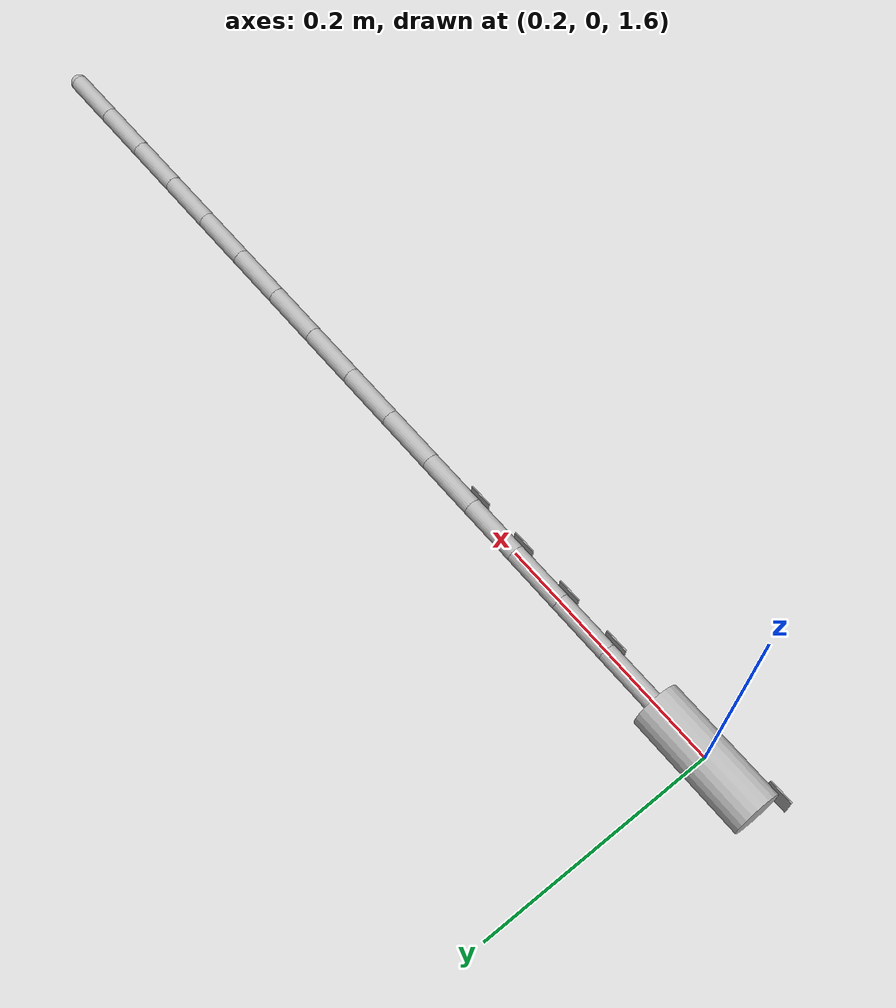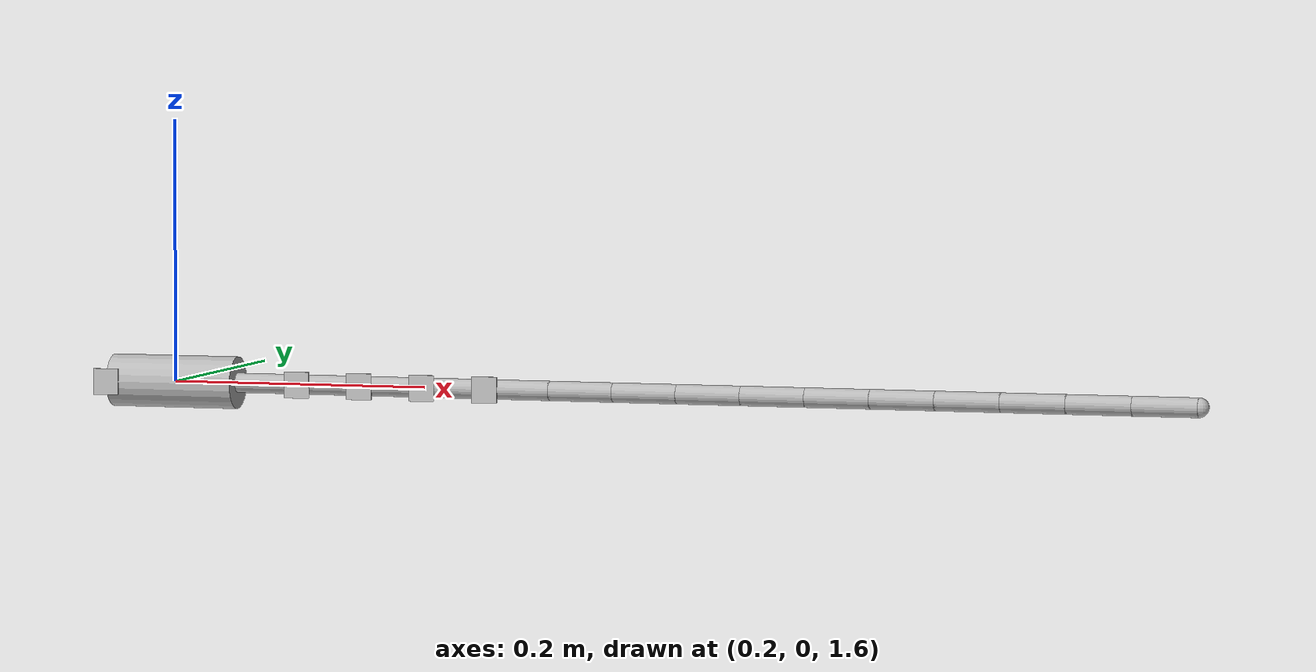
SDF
<?xml version="1.0" ?>
<sdf version="1.5">
  <model name="cable_apriltag">
    <pose>0.2 0 1.6 0 0 0</pose>
    <joint name="joint_world" type="fixed">
      <child>link_05</child>
      <parent>world</parent>
      <axis>
        <xyz>0.500000 0.000000 1.200000</xyz>
        <dynamics>
          <damping>10.000000</damping>
          <friction>0.000000</friction>
        </dynamics>
        <use_parent_model_frame>true</use_parent_model_frame>
      </axis>
    </joint>
       <link name="plug">
      <pose>0.000000 0.000000 0.000000 0.000000 1.570796 0.000000</pose>
      <inertial>
        <pose>0.000000 0.000000 0.000000 0.000000 0.000000 0.000000</pose>
        <mass>0.20000</mass>
        <inertia>
          <ixx>0.010000</ixx>
          <ixy>0.000000</ixy>
          <ixz>0.000000</ixz>
          <iyy>0.010000</iyy>
          <iyz>0.000000</iyz>
          <izz>0.010000</izz>
        </inertia>
      </inertial>
      <collision name="plug_collision">
        <pose>-0.000000 0.000000 0.000000 0.000000 0.000000 0.000000</pose>
        <geometry>
          <cylinder>
            <radius>0.02</radius>
            <length>0.1</length>
          </cylinder>
        </geometry>
      </collision>
      <visual name="plug_vis">
        <pose>-0.000000 0.000000 0.000000 0.000000 0.000000 0.000000</pose>
        <geometry>
          <cylinder>
            <radius>0.02</radius>
            <length>0.1</length>
          </cylinder>
        </geometry>
      </visual>
      <velocity_decay />
    </link>

    <link name="link_01">

      <pose>0.050000 0.000000 0.000000 0.000000 -0.000000 0.000000</pose>
      <inertial>
        <pose>0.000000 0.000000 0.000000 0.000000 -0.000000 0.000000</pose>
        <mass>0.100000</mass>
        <inertia>
          <ixx>0.010000</ixx>
          <ixy>0.000000</ixy>
          <ixz>0.000000</ixz>
          <iyy>0.010000</iyy>
          <iyz>0.000000</iyz>
          <izz>0.010000</izz>
        </inertia>
      </inertial>
      <collision name="link_01_collision">
        <pose>0.025000 0.000000 0.000000 0.000000 1.570790 0.000000</pose>
        <geometry>
          <cylinder>
            <length>0.050000</length>
            <radius>0.007500</radius>
          </cylinder>
        </geometry>
      </collision>
      <visual name="link_01_vis">
        <pose>0.025000 0.000000 0.000000 0.000000 1.570790 0.000000</pose>
        <geometry>
          <cylinder>
            <length>0.050000</length>
            <radius>0.007500</radius>
          </cylinder>
        </geometry>
      </visual>
      <velocity_decay />
    </link>
    <joint name="joint_plug" type="fixed">
      <child>link_01</child>
      <parent>plug</parent>
      <axis>
        <xyz>0.000000 1.000000 0.000000</xyz>
        <limit>
          <lower>-0.200000</lower>
          <upper>0.200000</upper>
        </limit>
        <dynamics>
          <damping>10.000000</damping>
          <friction>0.000000</friction>
        </dynamics>
        <use_parent_model_frame>true</use_parent_model_frame>
      </axis>
    </joint>
    <link name="sphere_02">
      <gravity>false</gravity>
      <pose>0.100000 0.000000 0.000000 0.000000 -0.000000 0.000000</pose>
      <inertial>
        <pose>0.000000 0.000000 0.000000 0.000000 -0.000000 0.000000</pose>
        <mass>0.100000</mass>
        <inertia>
          <ixx>0.010000</ixx>
          <ixy>0.000000</ixy>
          <ixz>0.000000</ixz>
          <iyy>0.010000</iyy>
          <iyz>0.000000</iyz>
          <izz>0.010000</izz>
        </inertia>
      </inertial>
      <collision name="sphere_02_collision">
        <pose>0.000000 0.000000 0.000000 0.000000 -0.000000 0.000000</pose>
        <geometry>
          <sphere>
            <radius>0.007500</radius>
          </sphere>
        </geometry>
      </collision>
      <visual name="sphere_02_vis">
        <pose>0.000000 0.000000 0.000000 0.000000 -0.000000 0.000000</pose>
        <geometry>
          <sphere>
            <radius>0.007500</radius>
          </sphere>
        </geometry>
      </visual>
      <velocity_decay />
    </link>
    <joint name="joint_02_1" type="revolute">
      <child>sphere_02</child>
      <parent>link_01</parent>
      <axis>
        <xyz>0.000000 0.000000 1.000000</xyz>
        <limit>
          <lower>-0.005000</lower>
          <upper>0.005000</upper>
        </limit>
        <dynamics>
          <damping>10.000000</damping>
          <friction>0.000000</friction>
        </dynamics>
        <use_parent_model_frame>true</use_parent_model_frame>
      </axis>
    </joint>
    <link name="link_02">

      <pose>0.100000 0.000000 0.000000 0.000000 -0.000000 0.000000</pose>
      <inertial>
        <pose>0.000000 0.000000 0.000000 0.000000 -0.000000 0.000000</pose>
        <mass>0.100000</mass>
        <inertia>
          <ixx>0.010000</ixx>
          <ixy>0.000000</ixy>
          <ixz>0.000000</ixz>
          <iyy>0.010000</iyy>
          <iyz>0.000000</iyz>
          <izz>0.010000</izz>
        </inertia>
      </inertial>
      <collision name="link_02_collision">
        <pose>0.025000 0.000000 0.000000 0.000000 1.570790 0.000000</pose>
        <geometry>
          <cylinder>
            <length>0.050000</length>
            <radius>0.007500</radius>
          </cylinder>
        </geometry>
      </collision>
      <visual name="link_02_vis">
        <pose>0.025000 0.000000 0.000000 0.000000 1.570790 0.000000</pose>
        <geometry>
          <cylinder>
            <length>0.050000</length>
            <radius>0.007500</radius>
          </cylinder>
        </geometry>
      </visual>
      <velocity_decay />
    </link>
    <joint name="joint_02_2" type="revolute">
      <child>link_02</child>
      <parent>sphere_02</parent>
      <axis>
        <xyz>0.000000 1.000000 0.000000</xyz>
        <dynamics>
          <damping>1.75954</damping>
          <friction>0.000000</friction>
	  <spring_stiffness>0.557738</spring_stiffness>
        </dynamics>
        <use_parent_model_frame>true</use_parent_model_frame>
      </axis>
    </joint>
    <link name="sphere_03">
      <gravity>false</gravity>
      <pose>0.150000 0.000000 0.000000 0.000000 -0.000000 0.000000</pose>
      <inertial>
        <pose>0.000000 0.000000 0.000000 0.000000 -0.000000 0.000000</pose>
        <mass>0.100000</mass>
        <inertia>
          <ixx>0.010000</ixx>
          <ixy>0.000000</ixy>
          <ixz>0.000000</ixz>
          <iyy>0.010000</iyy>
          <iyz>0.000000</iyz>
          <izz>0.010000</izz>
        </inertia>
      </inertial>
      <collision name="sphere_03_collision">
        <pose>0.000000 0.000000 0.000000 0.000000 -0.000000 0.000000</pose>
        <geometry>
          <sphere>
            <radius>0.007500</radius>
          </sphere>
        </geometry>
      </collision>
      <visual name="sphere_03_vis">
        <pose>0.000000 0.000000 0.000000 0.000000 -0.000000 0.000000</pose>
        <geometry>
          <sphere>
            <radius>0.007500</radius>
          </sphere>
        </geometry>
      </visual>
      <velocity_decay />
    </link>
    <joint name="joint_03_1" type="revolute">
      <child>sphere_03</child>
      <parent>link_02</parent>
      <axis>
        <xyz>0.000000 0.000000 1.000000</xyz>
        <limit>
          <lower>-0.005000</lower>
          <upper>0.005000</upper>
        </limit>
        <dynamics>
          <damping>10.000000</damping>
          <friction>0.000000</friction>
        </dynamics>
        <use_parent_model_frame>true</use_parent_model_frame>
      </axis>
    </joint>
    <link name="link_03">

      <pose>0.150000 0.000000 0.000000 0.000000 -0.000000 0.000000</pose>
      <inertial>
        <pose>0.000000 0.000000 0.000000 0.000000 -0.000000 0.000000</pose>
        <mass>0.100000</mass>
        <inertia>
          <ixx>0.010000</ixx>
          <ixy>0.000000</ixy>
          <ixz>0.000000</ixz>
          <iyy>0.010000</iyy>
          <iyz>0.000000</iyz>
          <izz>0.010000</izz>
        </inertia>
      </inertial>
      <collision name="link_03_collision">
        <pose>0.025000 0.000000 0.000000 0.000000 1.570790 0.000000</pose>
        <geometry>
          <cylinder>
            <length>0.050000</length>
            <radius>0.007500</radius>
          </cylinder>
        </geometry>
      </collision>
      <visual name="link_03_vis">
        <pose>0.025000 0.000000 0.000000 0.000000 1.570790 0.000000</pose>
        <geometry>
          <cylinder>
            <length>0.050000</length>
            <radius>0.007500</radius>
          </cylinder>
        </geometry>
      </visual>
      <velocity_decay />
    </link>
    <joint name="joint_03_2" type="revolute">
      <child>link_03</child>
      <parent>sphere_03</parent>
      <axis>
        <xyz>0.000000 1.000000 0.000000</xyz>
        <dynamics>
          <damping>3.5445</damping>
          <friction>0.000000</friction>
	  <spring_stiffness>0.906265</spring_stiffness>
        </dynamics>
        <use_parent_model_frame>true</use_parent_model_frame>
      </axis>
    </joint>
    <link name="sphere_04">
      <gravity>false</gravity>
      <pose>0.200000 0.000000 0.000000 0.000000 -0.000000 0.000000</pose>
      <inertial>
        <pose>0.000000 0.000000 0.000000 0.000000 -0.000000 0.000000</pose>
        <mass>0.100000</mass>
        <inertia>
          <ixx>0.010000</ixx>
          <ixy>0.000000</ixy>
          <ixz>0.000000</ixz>
          <iyy>0.010000</iyy>
          <iyz>0.000000</iyz>
          <izz>0.010000</izz>
        </inertia>
      </inertial>
      <collision name="sphere_04_collision">
        <pose>0.000000 0.000000 0.000000 0.000000 -0.000000 0.000000</pose>
        <geometry>
          <sphere>
            <radius>0.007500</radius>
          </sphere>
        </geometry>
      </collision>
      <visual name="sphere_04_vis">
        <pose>0.000000 0.000000 0.000000 0.000000 -0.000000 0.000000</pose>
        <geometry>
          <sphere>
            <radius>0.007500</radius>
          </sphere>
        </geometry>
      </visual>
      <velocity_decay />
    </link>
    <joint name="joint_04_1" type="revolute">
      <child>sphere_04</child>
      <parent>link_03</parent>
      <axis>
        <xyz>0.000000 0.000000 1.000000</xyz>
        <limit>
          <lower>-0.005000</lower>
          <upper>0.005000</upper>
        </limit>
        <dynamics>
          <damping>10.000000</damping>
          <friction>0.000000</friction>
        </dynamics>
        <use_parent_model_frame>true</use_parent_model_frame>
      </axis>
    </joint>
    <link name="link_04">

      <pose>0.200000 0.000000 0.000000 0.000000 -0.000000 0.000000</pose>
      <inertial>
        <pose>0.000000 0.000000 0.000000 0.000000 -0.000000 0.000000</pose>
        <mass>0.0100000</mass>
        <inertia>
          <ixx>0.010000</ixx>
          <ixy>0.000000</ixy>
          <ixz>0.000000</ixz>
          <iyy>0.010000</iyy>
          <iyz>0.000000</iyz>
          <izz>0.010000</izz>
        </inertia>
      </inertial>
      <collision name="link_04_collision">
        <pose>0.025000 0.000000 0.000000 0.000000 1.570790 0.000000</pose>
        <geometry>
          <cylinder>
            <length>0.050000</length>
            <radius>0.007500</radius>
          </cylinder>
        </geometry>
      </collision>
      <visual name="link_04_vis">
        <pose>0.025000 0.000000 0.000000 0.000000 1.570790 0.000000</pose>
        <geometry>
          <cylinder>
            <length>0.050000</length>
            <radius>0.007500</radius>
          </cylinder>
        </geometry>
      </visual>
      <velocity_decay />
    </link>
    <joint name="joint_04_2" type="revolute">
      <child>link_04</child>
      <parent>sphere_04</parent>
      <axis>
        <xyz>0.000000 1.000000 0.000000</xyz>
        <dynamics>
          <damping>6.31788</damping>
          <friction>0.000000</friction>
          <spring_stiffness>0.675703</spring_stiffness>
        </dynamics>
        <use_parent_model_frame>true</use_parent_model_frame>
      </axis>
    </joint>
    <link name="sphere_05">
      <gravity>false</gravity>
      <pose>0.250000 0.000000 0.000000 0.000000 -0.000000 0.000000</pose>
      <inertial>
        <pose>0.000000 0.000000 0.000000 0.000000 -0.000000 0.000000</pose>
        <mass>0.100000</mass>
        <inertia>
          <ixx>0.010000</ixx>
          <ixy>0.000000</ixy>
          <ixz>0.000000</ixz>
          <iyy>0.010000</iyy>
          <iyz>0.000000</iyz>
          <izz>0.010000</izz>
        </inertia>
      </inertial>
      <collision name="sphere_05_collision">
        <pose>0.000000 0.000000 0.000000 0.000000 -0.000000 0.000000</pose>
        <geometry>
          <sphere>
            <radius>0.007500</radius>
          </sphere>
        </geometry>
      </collision>
      <visual name="sphere_05_vis">
        <pose>0.000000 0.000000 0.000000 0.000000 -0.000000 0.000000</pose>
        <geometry>
          <sphere>
            <radius>0.007500</radius>
          </sphere>
        </geometry>
      </visual>
      <velocity_decay />
    </link>
    <joint name="joint_05_1" type="revolute">
      <child>sphere_05</child>
      <parent>link_04</parent>
      <axis>
        <xyz>0.000000 0.000000 1.000000</xyz>
        <limit>
          <lower>-0.005000</lower>
          <upper>0.005000</upper>
        </limit>
        <dynamics>
          <damping>10.000000</damping>
          <friction>0.000000</friction>
        </dynamics>
        <use_parent_model_frame>true</use_parent_model_frame>
      </axis>
    </joint>
    <link name="link_05">

      <pose>0.250000 0.000000 0.000000 0.000000 -0.000000 0.000000</pose>
      <inertial>
        <pose>0.000000 0.000000 0.000000 0.000000 -0.000000 0.000000</pose>
        <mass>0.0100000</mass>
        <inertia>
          <ixx>0.010000</ixx>
          <ixy>0.000000</ixy>
          <ixz>0.000000</ixz>
          <iyy>0.010000</iyy>
          <iyz>0.000000</iyz>
          <izz>0.010000</izz>
        </inertia>
      </inertial>
      <collision name="link_05_collision">
        <pose>0.025000 0.000000 0.000000 0.000000 1.570790 0.000000</pose>
        <geometry>
          <cylinder>
            <length>0.050000</length>
            <radius>0.007500</radius>
          </cylinder>
        </geometry>
      </collision>
      <visual name="link_05_vis">
        <pose>0.025000 0.000000 0.000000 0.000000 1.570790 0.000000</pose>
        <geometry>
          <cylinder>
            <length>0.050000</length>
            <radius>0.007500</radius>
          </cylinder>
        </geometry>
      </visual>
      <velocity_decay />
    </link>
    <joint name="joint_05_2" type="revolute">
      <child>link_05</child>
      <parent>sphere_05</parent>
      <axis>
        <xyz>0.000000 1.000000 0.000000</xyz>
        <dynamics>
          <damping>7.02696</damping>
          <friction>0.000000</friction>
          <spring_stiffness>0.710039</spring_stiffness>
        </dynamics>
        <use_parent_model_frame>true</use_parent_model_frame>
      </axis>
    </joint>
    <link name="sphere_06">
      <gravity>false</gravity>
      <pose>0.300000 0.000000 0.000000 0.000000 -0.000000 0.000000</pose>
      <inertial>
        <pose>0.000000 0.000000 0.000000 0.000000 -0.000000 0.000000</pose>
        <mass>0.100000</mass>
        <inertia>
          <ixx>0.010000</ixx>
          <ixy>0.000000</ixy>
          <ixz>0.000000</ixz>
          <iyy>0.010000</iyy>
          <iyz>0.000000</iyz>
          <izz>0.010000</izz>
        </inertia>
      </inertial>
      <collision name="sphere_06_collision">
        <pose>0.000000 0.000000 0.000000 0.000000 -0.000000 0.000000</pose>
        <geometry>
          <sphere>
            <radius>0.007500</radius>
          </sphere>
        </geometry>
      </collision>
      <visual name="sphere_06_vis">
        <pose>0.000000 0.000000 0.000000 0.000000 -0.000000 0.000000</pose>
        <geometry>
          <sphere>
            <radius>0.007500</radius>
          </sphere>
        </geometry>
      </visual>
      <velocity_decay />
    </link>
    <joint name="joint_06_1" type="revolute">
      <child>sphere_06</child>
      <parent>link_05</parent>
      <axis>
        <xyz>0.000000 0.000000 1.000000</xyz>
        <limit>
          <lower>-0.005000</lower>
          <upper>0.005000</upper>
        </limit>
        <dynamics>
          <damping>10.000000</damping>
          <friction>0.000000</friction>
        </dynamics>
        <use_parent_model_frame>true</use_parent_model_frame>
      </axis>
    </joint>
    <link name="link_06">

      <pose>0.300000 0.000000 0.000000 0.000000 -0.000000 0.000000</pose>
      <inertial>
        <pose>0.000000 0.000000 0.000000 0.000000 -0.000000 0.000000</pose>
        <mass>0.0100000</mass>
        <inertia>
          <ixx>0.010000</ixx>
          <ixy>0.000000</ixy>
          <ixz>0.000000</ixz>
          <iyy>0.010000</iyy>
          <iyz>0.000000</iyz>
          <izz>0.010000</izz>
        </inertia>
      </inertial>
      <collision name="link_06_collision">
        <pose>0.025000 0.000000 0.000000 0.000000 1.570790 0.000000</pose>
        <geometry>
          <cylinder>
            <length>0.050000</length>
            <radius>0.007500</radius>
          </cylinder>
        </geometry>
      </collision>
      <visual name="link_06_vis">
        <pose>0.025000 0.000000 0.000000 0.000000 1.570790 0.000000</pose>
        <geometry>
          <cylinder>
            <length>0.050000</length>
            <radius>0.007500</radius>
          </cylinder>
        </geometry>
      </visual>
      <velocity_decay />
    </link>
    <joint name="joint_06_2" type="revolute">
      <child>link_06</child>
      <parent>sphere_06</parent>
      <axis>
        <xyz>0.000000 1.000000 0.000000</xyz>
        <limit>
          <lower>-0.500000</lower>
          <upper>0.500000</upper>
        </limit>
        <dynamics>
          <damping>10.000000</damping>
          <friction>0.000000</friction>
        </dynamics>
        <use_parent_model_frame>true</use_parent_model_frame>
      </axis>
    </joint>
    <link name="sphere_07">
      <gravity>false</gravity>
      <pose>0.350000 0.000000 0.000000 0.000000 -0.000000 0.000000</pose>
      <inertial>
        <pose>0.000000 0.000000 0.000000 0.000000 -0.000000 0.000000</pose>
        <mass>0.100000</mass>
        <inertia>
          <ixx>0.010000</ixx>
          <ixy>0.000000</ixy>
          <ixz>0.000000</ixz>
          <iyy>0.010000</iyy>
          <iyz>0.000000</iyz>
          <izz>0.010000</izz>
        </inertia>
      </inertial>
      <collision name="sphere_07_collision">
        <pose>0.000000 0.000000 0.000000 0.000000 -0.000000 0.000000</pose>
        <geometry>
          <sphere>
            <radius>0.007500</radius>
          </sphere>
        </geometry>
      </collision>
      <visual name="sphere_07_vis">
        <pose>0.000000 0.000000 0.000000 0.000000 -0.000000 0.000000</pose>
        <geometry>
          <sphere>
            <radius>0.007500</radius>
          </sphere>
        </geometry>
      </visual>
      <velocity_decay />
    </link>
    <joint name="joint_07_1" type="revolute">
      <child>sphere_07</child>
      <parent>link_06</parent>
      <axis>
        <xyz>0.000000 0.000000 1.000000</xyz>
        <limit>
          <lower>-0.005000</lower>
          <upper>0.005000</upper>
        </limit>
        <dynamics>
          <damping>10.000000</damping>
          <friction>0.000000</friction>
        </dynamics>
        <use_parent_model_frame>true</use_parent_model_frame>
      </axis>
    </joint>
    <link name="link_07">

      <pose>0.350000 0.000000 0.000000 0.000000 -0.000000 0.000000</pose>
      <inertial>
        <pose>0.000000 0.000000 0.000000 0.000000 -0.000000 0.000000</pose>
        <mass>0.0100000</mass>
        <inertia>
          <ixx>0.010000</ixx>
          <ixy>0.000000</ixy>
          <ixz>0.000000</ixz>
          <iyy>0.010000</iyy>
          <iyz>0.000000</iyz>
          <izz>0.010000</izz>
        </inertia>
      </inertial>
      <collision name="link_07_collision">
        <pose>0.025000 0.000000 0.000000 0.000000 1.570790 0.000000</pose>
        <geometry>
          <cylinder>
            <length>0.050000</length>
            <radius>0.007500</radius>
          </cylinder>
        </geometry>
      </collision>
      <visual name="link_07_vis">
        <pose>0.025000 0.000000 0.000000 0.000000 1.570790 0.000000</pose>
        <geometry>
          <cylinder>
            <length>0.050000</length>
            <radius>0.007500</radius>
          </cylinder>
        </geometry>
      </visual>
      <velocity_decay />
    </link>
    <joint name="joint_07_2" type="revolute">
      <child>link_07</child>
      <parent>sphere_07</parent>
      <axis>
        <xyz>0.000000 1.000000 0.000000</xyz>
        <limit>
          <lower>-0.500000</lower>
          <upper>0.500000</upper>
        </limit>
        <dynamics>
          <damping>10.000000</damping>
          <friction>0.000000</friction>
        </dynamics>
        <use_parent_model_frame>true</use_parent_model_frame>
      </axis>
    </joint>
    <link name="sphere_08">
      <gravity>false</gravity>
      <pose>0.400000 0.000000 0.000000 0.000000 -0.000000 0.000000</pose>
      <inertial>
        <pose>0.000000 0.000000 0.000000 0.000000 -0.000000 0.000000</pose>
        <mass>0.100000</mass>
        <inertia>
          <ixx>0.010000</ixx>
          <ixy>0.000000</ixy>
          <ixz>0.000000</ixz>
          <iyy>0.010000</iyy>
          <iyz>0.000000</iyz>
          <izz>0.010000</izz>
        </inertia>
      </inertial>
      <collision name="sphere_08_collision">
        <pose>0.000000 0.000000 0.000000 0.000000 -0.000000 0.000000</pose>
        <geometry>
          <sphere>
            <radius>0.007500</radius>
          </sphere>
        </geometry>
      </collision>
      <visual name="sphere_08_vis">
        <pose>0.000000 0.000000 0.000000 0.000000 -0.000000 0.000000</pose>
        <geometry>
          <sphere>
            <radius>0.007500</radius>
          </sphere>
        </geometry>
      </visual>
      <velocity_decay />
    </link>
    <joint name="joint_08_1" type="revolute">
      <child>sphere_08</child>
      <parent>link_07</parent>
      <axis>
        <xyz>0.000000 0.000000 1.000000</xyz>
        <limit>
          <lower>-0.005000</lower>
          <upper>0.005000</upper>
        </limit>
        <dynamics>
          <damping>10.000000</damping>
          <friction>0.000000</friction>
        </dynamics>
        <use_parent_model_frame>true</use_parent_model_frame>
      </axis>
    </joint>
    <link name="link_08">

      <pose>0.400000 0.000000 0.000000 0.000000 -0.000000 0.000000</pose>
      <inertial>
        <pose>0.000000 0.000000 0.000000 0.000000 -0.000000 0.000000</pose>
        <mass>0.0100000</mass>
        <inertia>
          <ixx>0.010000</ixx>
          <ixy>0.000000</ixy>
          <ixz>0.000000</ixz>
          <iyy>0.010000</iyy>
          <iyz>0.000000</iyz>
          <izz>0.010000</izz>
        </inertia>
      </inertial>
      <collision name="link_08_collision">
        <pose>0.025000 0.000000 0.000000 0.000000 1.570790 0.000000</pose>
        <geometry>
          <cylinder>
            <length>0.050000</length>
            <radius>0.007500</radius>
          </cylinder>
        </geometry>
      </collision>
      <visual name="link_08_vis">
        <pose>0.025000 0.000000 0.000000 0.000000 1.570790 0.000000</pose>
        <geometry>
          <cylinder>
            <length>0.050000</length>
            <radius>0.007500</radius>
          </cylinder>
        </geometry>
      </visual>
      <velocity_decay />
    </link>
    <joint name="joint_08_2" type="revolute">
      <child>link_08</child>
      <parent>sphere_08</parent>
      <axis>
        <xyz>0.000000 1.000000 0.000000</xyz>
        <limit>
          <lower>-0.500000</lower>
          <upper>0.500000</upper>
        </limit>
        <dynamics>
          <damping>10.000000</damping>
          <friction>0.000000</friction>
        </dynamics>
        <use_parent_model_frame>true</use_parent_model_frame>
      </axis>
    </joint>
    <link name="sphere_09">
      <gravity>false</gravity>
      <pose>0.450000 0.000000 0.000000 0.000000 -0.000000 0.000000</pose>
      <inertial>
        <pose>0.000000 0.000000 0.000000 0.000000 -0.000000 0.000000</pose>
        <mass>0.100000</mass>
        <inertia>
          <ixx>0.010000</ixx>
          <ixy>0.000000</ixy>
          <ixz>0.000000</ixz>
          <iyy>0.010000</iyy>
          <iyz>0.000000</iyz>
          <izz>0.010000</izz>
        </inertia>
      </inertial>
      <collision name="sphere_09_collision">
        <pose>0.000000 0.000000 0.000000 0.000000 -0.000000 0.000000</pose>
        <geometry>
          <sphere>
            <radius>0.007500</radius>
          </sphere>
        </geometry>
      </collision>
      <visual name="sphere_09_vis">
        <pose>0.000000 0.000000 0.000000 0.000000 -0.000000 0.000000</pose>
        <geometry>
          <sphere>
            <radius>0.007500</radius>
          </sphere>
        </geometry>
      </visual>
      <velocity_decay />
    </link>
    <joint name="joint_09_1" type="revolute">
      <child>sphere_09</child>
      <parent>link_08</parent>
      <axis>
        <xyz>0.000000 0.000000 1.000000</xyz>
        <limit>
          <lower>-0.005000</lower>
          <upper>0.005000</upper>
        </limit>
        <dynamics>
          <damping>10.000000</damping>
          <friction>0.000000</friction>
        </dynamics>
        <use_parent_model_frame>true</use_parent_model_frame>
      </axis>
    </joint>
    <link name="link_09">

      <pose>0.450000 0.000000 0.000000 0.000000 -0.000000 0.000000</pose>
      <inertial>
        <pose>0.000000 0.000000 0.000000 0.000000 -0.000000 0.000000</pose>
        <mass>0.0100000</mass>
        <inertia>
          <ixx>0.010000</ixx>
          <ixy>0.000000</ixy>
          <ixz>0.000000</ixz>
          <iyy>0.010000</iyy>
          <iyz>0.000000</iyz>
          <izz>0.010000</izz>
        </inertia>
      </inertial>
      <collision name="link_09_collision">
        <pose>0.025000 0.000000 0.000000 0.000000 1.570790 0.000000</pose>
        <geometry>
          <cylinder>
            <length>0.050000</length>
            <radius>0.007500</radius>
          </cylinder>
        </geometry>
      </collision>
      <visual name="link_09_vis">
        <pose>0.025000 0.000000 0.000000 0.000000 1.570790 0.000000</pose>
        <geometry>
          <cylinder>
            <length>0.050000</length>
            <radius>0.007500</radius>
          </cylinder>
        </geometry>
      </visual>
      <velocity_decay />
    </link>
    <joint name="joint_09_2" type="revolute">
      <child>link_09</child>
      <parent>sphere_09</parent>
      <axis>
        <xyz>0.000000 1.000000 0.000000</xyz>
        <limit>
          <lower>-0.500000</lower>
          <upper>0.500000</upper>
        </limit>
        <dynamics>
          <damping>10.000000</damping>
          <friction>0.000000</friction>
        </dynamics>
        <use_parent_model_frame>true</use_parent_model_frame>
      </axis>
    </joint>
    <link name="sphere_10">
      <gravity>false</gravity>
      <pose>0.500000 0.000000 0.000000 0.000000 -0.000000 0.000000</pose>
      <inertial>
        <pose>0.000000 0.000000 0.000000 0.000000 -0.000000 0.000000</pose>
        <mass>0.100000</mass>
        <inertia>
          <ixx>0.010000</ixx>
          <ixy>0.000000</ixy>
          <ixz>0.000000</ixz>
          <iyy>0.010000</iyy>
          <iyz>0.000000</iyz>
          <izz>0.010000</izz>
        </inertia>
      </inertial>
      <collision name="sphere_10_collision">
        <pose>0.000000 0.000000 0.000000 0.000000 -0.000000 0.000000</pose>
        <geometry>
          <sphere>
            <radius>0.007500</radius>
          </sphere>
        </geometry>
      </collision>
      <visual name="sphere_10_vis">
        <pose>0.000000 0.000000 0.000000 0.000000 -0.000000 0.000000</pose>
        <geometry>
          <sphere>
            <radius>0.007500</radius>
          </sphere>
        </geometry>
      </visual>
      <velocity_decay />
    </link>
    <joint name="joint_10_1" type="revolute">
      <child>sphere_10</child>
      <parent>link_09</parent>
      <axis>
        <xyz>0.000000 0.000000 1.000000</xyz>
        <limit>
          <lower>-0.005000</lower>
          <upper>0.005000</upper>
        </limit>
        <dynamics>
          <damping>10.000000</damping>
          <friction>0.000000</friction>
        </dynamics>
        <use_parent_model_frame>true</use_parent_model_frame>
      </axis>
    </joint>

    <link name="link_10">

      <pose>0.500000 0.000000 0.000000 0.000000 -0.000000 0.000000</pose>
      <inertial>
        <pose>0.000000 0.000000 0.000000 0.000000 -0.000000 0.000000</pose>
        <mass>0.0100000</mass>
        <inertia>
          <ixx>0.010000</ixx>
          <ixy>0.000000</ixy>
          <ixz>0.000000</ixz>
          <iyy>0.010000</iyy>
          <iyz>0.000000</iyz>
          <izz>0.010000</izz>
        </inertia>
      </inertial>
      <collision name="link_10_collision">
        <pose>0.025000 0.000000 0.000000 0.000000 1.570790 0.000000</pose>
        <geometry>
          <cylinder>
            <length>0.050000</length>
            <radius>0.007500</radius>
          </cylinder>
        </geometry>
      </collision>
      <visual name="link_10_vis">
        <pose>0.025000 0.000000 0.000000 0.000000 1.570790 0.000000</pose>
        <geometry>
          <cylinder>
            <length>0.050000</length>
            <radius>0.007500</radius>
          </cylinder>
        </geometry>
      </visual>
      <velocity_decay />
    </link>
    <joint name="joint_10_2" type="revolute">
      <child>link_10</child>
      <parent>sphere_10</parent>
      <axis>
        <xyz>0.000000 1.000000 0.000000</xyz>
        <limit>
          <lower>-0.500000</lower>
          <upper>0.500000</upper>
        </limit>
        <dynamics>
          <damping>10.000000</damping>
          <friction>0.000000</friction>
        </dynamics>
        <use_parent_model_frame>true</use_parent_model_frame>
      </axis>
    </joint>
    <link name="sphere_11">
      <gravity>false</gravity>
      <pose>0.550000 0.000000 0.000000 0.000000 -0.000000 0.000000</pose>
      <inertial>
        <pose>0.000000 0.000000 0.000000 0.000000 -0.000000 0.000000</pose>
        <mass>0.100000</mass>
        <inertia>
          <ixx>0.010000</ixx>
          <ixy>0.000000</ixy>
          <ixz>0.000000</ixz>
          <iyy>0.010000</iyy>
          <iyz>0.000000</iyz>
          <izz>0.010000</izz>
        </inertia>
      </inertial>
      <collision name="sphere_11_collision">
        <pose>0.000000 0.000000 0.000000 0.000000 -0.000000 0.000000</pose>
        <geometry>
          <sphere>
            <radius>0.007500</radius>
          </sphere>
        </geometry>
      </collision>
      <visual name="sphere_11_vis">
        <pose>0.000000 0.000000 0.000000 0.000000 -0.000000 0.000000</pose>
        <geometry>
          <sphere>
            <radius>0.007500</radius>
          </sphere>
        </geometry>
      </visual>
      <velocity_decay />
    </link>
    <joint name="joint_11_1" type="revolute">
      <child>sphere_11</child>
      <parent>link_10</parent>
      <axis>
        <xyz>0.000000 0.000000 1.000000</xyz>
        <limit>
          <lower>-0.005000</lower>
          <upper>0.005000</upper>
        </limit>
        <dynamics>
          <damping>10.000000</damping>
          <friction>0.000000</friction>
        </dynamics>
        <use_parent_model_frame>true</use_parent_model_frame>
      </axis>
    </joint>

<link name="link_11">

      <pose>0.550000 0.000000 0.000000 0.000000 -0.000000 0.000000</pose>
      <inertial>
        <pose>0.000000 0.000000 0.000000 0.000000 -0.000000 0.000000</pose>
        <mass>0.0100000</mass>
        <inertia>
          <ixx>0.010000</ixx>
          <ixy>0.000000</ixy>
          <ixz>0.000000</ixz>
          <iyy>0.010000</iyy>
          <iyz>0.000000</iyz>
          <izz>0.010000</izz>
        </inertia>
      </inertial>
      <collision name="link_11_collision">
        <pose>0.025000 0.000000 0.000000 0.000000 1.570790 0.000000</pose>
        <geometry>
          <cylinder>
            <length>0.050000</length>
            <radius>0.007500</radius>
          </cylinder>
        </geometry>
      </collision>
      <visual name="link_11_vis">
        <pose>0.025000 0.000000 0.000000 0.000000 1.570790 0.000000</pose>
        <geometry>
          <cylinder>
            <length>0.050000</length>
            <radius>0.007500</radius>
          </cylinder>
        </geometry>
      </visual>
      <velocity_decay />
    </link>
    <joint name="joint_11_2" type="revolute">
      <child>link_11</child>
      <parent>sphere_11</parent>
      <axis>
        <xyz>0.000000 1.000000 0.000000</xyz>
        <limit>
          <lower>-0.500000</lower>
          <upper>0.500000</upper>
        </limit>
        <dynamics>
          <damping>10.000000</damping>
          <friction>0.000000</friction>
        </dynamics>
        <use_parent_model_frame>true</use_parent_model_frame>
      </axis>
    </joint>
    <link name="sphere_12">
      <gravity>false</gravity>
      <pose>0.600000 0.000000 0.000000 0.000000 -0.000000 0.000000</pose>
      <inertial>
        <pose>0.000000 0.000000 0.000000 0.000000 -0.000000 0.000000</pose>
        <mass>0.100000</mass>
        <inertia>
          <ixx>0.010000</ixx>
          <ixy>0.000000</ixy>
          <ixz>0.000000</ixz>
          <iyy>0.010000</iyy>
          <iyz>0.000000</iyz>
          <izz>0.010000</izz>
        </inertia>
      </inertial>
      <collision name="sphere_12_collision">
        <pose>0.000000 0.000000 0.000000 0.000000 -0.000000 0.000000</pose>
        <geometry>
          <sphere>
            <radius>0.007500</radius>
          </sphere>
        </geometry>
      </collision>
      <visual name="sphere_12_vis">
        <pose>0.000000 0.000000 0.000000 0.000000 -0.000000 0.000000</pose>
        <geometry>
          <sphere>
            <radius>0.007500</radius>
          </sphere>
        </geometry>
      </visual>
      <velocity_decay />
    </link>
    <joint name="joint_12_1" type="revolute">
      <child>sphere_12</child>
      <parent>link_11</parent>
      <axis>
        <xyz>0.000000 0.000000 1.000000</xyz>
        <limit>
          <lower>-0.005000</lower>
          <upper>0.005000</upper>
        </limit>
        <dynamics>
          <damping>10.000000</damping>
          <friction>0.000000</friction>
        </dynamics>
        <use_parent_model_frame>true</use_parent_model_frame>
      </axis>
    </joint>

<link name="link_12">

      <pose>0.600000 0.000000 0.000000 0.000000 -0.000000 0.000000</pose>
      <inertial>
        <pose>0.000000 0.000000 0.000000 0.000000 -0.000000 0.000000</pose>
        <mass>0.0100000</mass>
        <inertia>
          <ixx>0.010000</ixx>
          <ixy>0.000000</ixy>
          <ixz>0.000000</ixz>
          <iyy>0.010000</iyy>
          <iyz>0.000000</iyz>
          <izz>0.010000</izz>
        </inertia>
      </inertial>
      <collision name="link_12_collision">
        <pose>0.025000 0.000000 0.000000 0.000000 1.570790 0.000000</pose>
        <geometry>
          <cylinder>
            <length>0.050000</length>
            <radius>0.007500</radius>
          </cylinder>
        </geometry>
      </collision>
      <visual name="link_12_vis">
        <pose>0.025000 0.000000 0.000000 0.000000 1.570790 0.000000</pose>
        <geometry>
          <cylinder>
            <length>0.050000</length>
            <radius>0.007500</radius>
          </cylinder>
        </geometry>
      </visual>
      <velocity_decay />
    </link>
    <joint name="joint_12_2" type="revolute">
      <child>link_12</child>
      <parent>sphere_12</parent>
      <axis>
        <xyz>0.000000 1.000000 0.000000</xyz>
        <limit>
          <lower>-0.700000</lower>
          <upper>0.700000</upper>
        </limit>
        <dynamics>
          <damping>10.000000</damping>
          <friction>0.000000</friction>
        </dynamics>
        <use_parent_model_frame>true</use_parent_model_frame>
      </axis>
    </joint>
    <link name="sphere_13">
      <gravity>false</gravity>
      <pose>0.650000 0.000000 0.000000 0.000000 -0.000000 0.000000</pose>
      <inertial>
        <pose>0.000000 0.000000 0.000000 0.000000 -0.000000 0.000000</pose>
        <mass>0.100000</mass>
        <inertia>
          <ixx>0.010000</ixx>
          <ixy>0.000000</ixy>
          <ixz>0.000000</ixz>
          <iyy>0.010000</iyy>
          <iyz>0.000000</iyz>
          <izz>0.010000</izz>
        </inertia>
      </inertial>
      <collision name="sphere_13_collision">
        <pose>0.000000 0.000000 0.000000 0.000000 -0.000000 0.000000</pose>
        <geometry>
          <sphere>
            <radius>0.007500</radius>
          </sphere>
        </geometry>
      </collision>
      <visual name="sphere_13_vis">
        <pose>0.000000 0.000000 0.000000 0.000000 -0.000000 0.000000</pose>
        <geometry>
          <sphere>
            <radius>0.007500</radius>
          </sphere>
        </geometry>
      </visual>
      <velocity_decay />
    </link>
    <joint name="joint_13_1" type="revolute">
      <child>sphere_13</child>
      <parent>link_12</parent>
      <axis>
        <xyz>0.000000 0.000000 1.000000</xyz>
        <limit>
          <lower>-0.700000</lower>
          <upper>0.700000</upper>
        </limit>
        <dynamics>
          <damping>10.000000</damping>
          <friction>0.000000</friction>
        </dynamics>
        <use_parent_model_frame>true</use_parent_model_frame>
      </axis>
    </joint>

<link name="link_13">

      <pose>0.650000 0.000000 0.000000 0.000000 -0.000000 0.000000</pose>
      <inertial>
        <pose>0.000000 0.000000 0.000000 0.000000 -0.000000 0.000000</pose>
        <mass>0.0100000</mass>
        <inertia>
          <ixx>0.010000</ixx>
          <ixy>0.000000</ixy>
          <ixz>0.000000</ixz>
          <iyy>0.010000</iyy>
          <iyz>0.000000</iyz>
          <izz>0.010000</izz>
        </inertia>
      </inertial>
      <collision name="link_13_collision">
        <pose>0.025000 0.000000 0.000000 0.000000 1.570790 0.000000</pose>
        <geometry>
          <cylinder>
            <length>0.050000</length>
            <radius>0.007500</radius>
          </cylinder>
        </geometry>
      </collision>
      <visual name="link_13_vis">
        <pose>0.025000 0.000000 0.000000 0.000000 1.570790 0.000000</pose>
        <geometry>
          <cylinder>
            <length>0.050000</length>
            <radius>0.007500</radius>
          </cylinder>
        </geometry>
      </visual>
      <velocity_decay />
    </link>
    <joint name="joint_13_2" type="revolute">
      <child>link_13</child>
      <parent>sphere_13</parent>
      <axis>
        <xyz>0.000000 1.000000 0.000000</xyz>
        <limit>
          <lower>-0.700000</lower>
          <upper>0.700000</upper>
        </limit>
        <dynamics>
          <damping>10.000000</damping>
          <friction>0.000000</friction>
        </dynamics>
        <use_parent_model_frame>true</use_parent_model_frame>
      </axis>
    </joint>
    <link name="sphere_14">
      <gravity>false</gravity>
      <pose>0.700000 0.000000 0.000000 0.000000 -0.000000 0.000000</pose>
      <inertial>
        <pose>0.000000 0.000000 0.000000 0.000000 -0.000000 0.000000</pose>
        <mass>0.100000</mass>
        <inertia>
          <ixx>0.010000</ixx>
          <ixy>0.000000</ixy>
          <ixz>0.000000</ixz>
          <iyy>0.010000</iyy>
          <iyz>0.000000</iyz>
          <izz>0.010000</izz>
        </inertia>
      </inertial>
      <collision name="sphere_14_collision">
        <pose>0.000000 0.000000 0.000000 0.000000 -0.000000 0.000000</pose>
        <geometry>
          <sphere>
            <radius>0.007500</radius>
          </sphere>
        </geometry>
      </collision>
      <visual name="sphere_14_vis">
        <pose>0.000000 0.000000 0.000000 0.000000 -0.000000 0.000000</pose>
        <geometry>
          <sphere>
            <radius>0.007500</radius>
          </sphere>
        </geometry>
      </visual>
      <velocity_decay />
    </link>
    <joint name="joint_14_1" type="revolute">
      <child>sphere_14</child>
      <parent>link_13</parent>
      <axis>
        <xyz>0.000000 0.000000 1.000000</xyz>
        <limit>
          <lower>-0.700000</lower>
          <upper>0.700000</upper>
        </limit>
        <dynamics>
          <damping>10.000000</damping>
          <friction>0.000000</friction>
        </dynamics>
        <use_parent_model_frame>true</use_parent_model_frame>
      </axis>
    </joint>

<link name="link_14">

      <pose>0.700000 0.000000 0.000000 0.000000 -0.000000 0.000000</pose>
      <inertial>
        <pose>0.000000 0.000000 0.000000 0.000000 -0.000000 0.000000</pose>
        <mass>0.0100000</mass>
        <inertia>
          <ixx>0.010000</ixx>
          <ixy>0.000000</ixy>
          <ixz>0.000000</ixz>
          <iyy>0.010000</iyy>
          <iyz>0.000000</iyz>
          <izz>0.010000</izz>
        </inertia>
      </inertial>
      <collision name="link_14_collision">
        <pose>0.025000 0.000000 0.000000 0.000000 1.570790 0.000000</pose>
        <geometry>
          <cylinder>
            <length>0.050000</length>
            <radius>0.007500</radius>
          </cylinder>
        </geometry>
      </collision>
      <visual name="link_14_vis">
        <pose>0.025000 0.000000 0.000000 0.000000 1.570790 0.000000</pose>
        <geometry>
          <cylinder>
            <length>0.050000</length>
            <radius>0.007500</radius>
          </cylinder>
        </geometry>
      </visual>
      <velocity_decay />
    </link>
    <joint name="joint_14_2" type="revolute">
      <child>link_14</child>
      <parent>sphere_14</parent>
      <axis>
        <xyz>0.000000 1.000000 0.000000</xyz>
        <limit>
          <lower>-0.700000</lower>
          <upper>0.700000</upper>
        </limit>
        <dynamics>
          <damping>10.000000</damping>
          <friction>0.000000</friction>
        </dynamics>
        <use_parent_model_frame>true</use_parent_model_frame>
      </axis>
    </joint>
    <link name="sphere_15">
      <gravity>false</gravity>
      <pose>0.750000 0.000000 0.000000 0.000000 -0.000000 0.000000</pose>
      <inertial>
        <pose>0.000000 0.000000 0.000000 0.000000 -0.000000 0.000000</pose>
        <mass>0.100000</mass>
        <inertia>
          <ixx>0.010000</ixx>
          <ixy>0.000000</ixy>
          <ixz>0.000000</ixz>
          <iyy>0.010000</iyy>
          <iyz>0.000000</iyz>
          <izz>0.010000</izz>
        </inertia>
      </inertial>
      <collision name="sphere_15_collision">
        <pose>0.000000 0.000000 0.000000 0.000000 -0.000000 0.000000</pose>
        <geometry>
          <sphere>
            <radius>0.007500</radius>
          </sphere>
        </geometry>
      </collision>
      <visual name="sphere_15_vis">
        <pose>0.000000 0.000000 0.000000 0.000000 -0.000000 0.000000</pose>
        <geometry>
          <sphere>
            <radius>0.007500</radius>
          </sphere>
        </geometry>
      </visual>
      <velocity_decay />
    </link>
    <joint name="joint_15_1" type="revolute">
      <child>sphere_15</child>
      <parent>link_14</parent>
      <axis>
        <xyz>0.000000 0.000000 1.000000</xyz>
        <limit>
          <lower>-0.700000</lower>
          <upper>0.700000</upper>
        </limit>
        <dynamics>
          <damping>10.000000</damping>
          <friction>0.000000</friction>
        </dynamics>
        <use_parent_model_frame>true</use_parent_model_frame>
      </axis>
    </joint>

<link name="link_15">

      <pose>0.750000 0.000000 0.000000 0.000000 -0.000000 0.000000</pose>
      <inertial>
        <pose>0.000000 0.000000 0.000000 0.000000 -0.000000 0.000000</pose>
        <mass>0.0100000</mass>
        <inertia>
          <ixx>0.010000</ixx>
          <ixy>0.000000</ixy>
          <ixz>0.000000</ixz>
          <iyy>0.010000</iyy>
          <iyz>0.000000</iyz>
          <izz>0.010000</izz>
        </inertia>
      </inertial>
      <collision name="link_15_collision">
        <pose>0.025000 0.000000 0.000000 0.000000 1.570790 0.000000</pose>
        <geometry>
          <cylinder>
            <length>0.050000</length>
            <radius>0.007500</radius>
          </cylinder>
        </geometry>
      </collision>
      <visual name="link_15_vis">
        <pose>0.025000 0.000000 0.000000 0.000000 1.570790 0.000000</pose>
        <geometry>
          <cylinder>
            <length>0.050000</length>
            <radius>0.007500</radius>
          </cylinder>
        </geometry>
      </visual>
      <velocity_decay />
    </link>
    <joint name="joint_15_2" type="revolute">
      <child>link_15</child>
      <parent>sphere_15</parent>
      <axis>
        <xyz>0.000000 1.000000 0.000000</xyz>
        <limit>
          <lower>-0.700000</lower>
          <upper>0.700000</upper>
        </limit>
        <dynamics>
          <damping>10.000000</damping>
          <friction>0.000000</friction>
        </dynamics>
        <use_parent_model_frame>true</use_parent_model_frame>
      </axis>
    </joint>
    <link name="sphere_16">
      <gravity>false</gravity>
      <pose>0.800000 0.000000 0.000000 0.000000 -0.000000 0.000000</pose>
      <inertial>
        <pose>0.000000 0.000000 0.000000 0.000000 -0.000000 0.000000</pose>
        <mass>0.100000</mass>
        <inertia>
          <ixx>0.010000</ixx>
          <ixy>0.000000</ixy>
          <ixz>0.000000</ixz>
          <iyy>0.010000</iyy>
          <iyz>0.000000</iyz>
          <izz>0.010000</izz>
        </inertia>
      </inertial>
      <collision name="sphere_16_collision">
        <pose>0.000000 0.000000 0.000000 0.000000 -0.000000 0.000000</pose>
        <geometry>
          <sphere>
            <radius>0.007500</radius>
          </sphere>
        </geometry>
      </collision>
      <visual name="sphere_16_vis">
        <pose>0.000000 0.000000 0.000000 0.000000 -0.000000 0.000000</pose>
        <geometry>
          <sphere>
            <radius>0.007500</radius>
          </sphere>
        </geometry>
      </visual>
      <velocity_decay />
    </link>
    <joint name="joint_16_1" type="revolute">
      <child>sphere_16</child>
      <parent>link_15</parent>
      <axis>
        <xyz>0.000000 0.000000 1.000000</xyz>
        <limit>
          <lower>-0.700000</lower>
          <upper>0.700000</upper>
        </limit>
        <dynamics>
          <damping>10.000000</damping>
          <friction>0.000000</friction>
        </dynamics>
        <use_parent_model_frame>true</use_parent_model_frame>
      </axis>
    </joint>

    <link name="link_a0">
      <gravity>false</gravity>
      <pose>-0.05000 -0.020000 0.000000 0.000000 -0.000000 0.000000</pose>
      <collision name="collision">
        <geometry>
          <box>
            <size>.02 0.001 .02</size>
          </box>
        </geometry>
      </collision>
      <visual name="visual">
        <cast_shadows>false</cast_shadows>
        <geometry>
          <box>
            <size>.02 0.001 .02</size>
          </box>
        </geometry>
        <material>
          <script>
            <uri>model://Tag0/materials/scripts</uri>
            <uri>model://Tag0/materials/textures</uri>
            <name>vrc/Tag0</name>
          </script>
        </material>
      </visual>
    </link>

    <joint name="joint_a0_plug" type="fixed">
      <child>link_a0</child>
      <parent>plug</parent>
      <axis>
        <xyz>0.000000 0.000000 1.000000</xyz>
        <limit>
          <lower>-0.700000</lower>
          <upper>0.700000</upper>
        </limit>
        <dynamics>
          <damping>10.000000</damping>
          <friction>0.000000</friction>
        </dynamics>
        <use_parent_model_frame>true</use_parent_model_frame>
      </axis>
    </joint>

    <link name="link_a1">
      <gravity>false</gravity>
      <pose>0.10000 -0.007500 0.000000 0.000000 -0.000000 0.000000</pose>
      <collision name="collision">
        <geometry>
          <box>
            <size>.02 0.001 .02</size>
          </box>
        </geometry>
      </collision>
      <visual name="visual">
        <cast_shadows>false</cast_shadows>
        <geometry>
          <box>
            <size>.02 0.001 .02</size>
          </box>
        </geometry>
        <material>
          <script>
            <uri>model://Tag1/materials/scripts</uri>
            <uri>model://Tag1/materials/textures</uri>
            <name>vrc/Tag1</name>
          </script>
        </material>
      </visual>
    </link>

    <joint name="joint_a1_link2" type="fixed">
      <child>link_a1</child>
      <parent>link_02</parent>
      <axis>
        <xyz>0.000000 0.000000 1.000000</xyz>
        <limit>
          <lower>-0.700000</lower>
          <upper>0.700000</upper>
        </limit>
        <dynamics>
          <damping>10.000000</damping>
          <friction>0.000000</friction>
        </dynamics>
        <use_parent_model_frame>true</use_parent_model_frame>
      </axis>
    </joint>

   <link name="link_a2">
      <gravity>false</gravity>
      <pose>0.15000 -0.007500 0.000000 0.000000 -0.000000 0.000000</pose>
      <collision name="collision">
        <geometry>
          <box>
            <size>.02 0.001 .02</size>
          </box>
        </geometry>
      </collision>
      <visual name="visual">
        <cast_shadows>false</cast_shadows>
        <geometry>
          <box>
            <size>.02 0.001 .02</size>
          </box>
        </geometry>
        <material>
          <script>
            <uri>model://Tag2/materials/scripts</uri>
            <uri>model://Tag2/materials/textures</uri>
            <name>vrc/Tag2</name>
          </script>
        </material>
      </visual>
    </link>

    <joint name="joint_a2_link3" type="fixed">
      <child>link_a2</child>
      <parent>link_03</parent>
      <axis>
        <xyz>0.000000 0.000000 1.000000</xyz>
        <limit>
          <lower>-0.700000</lower>
          <upper>0.700000</upper>
        </limit>
        <dynamics>
          <damping>10.000000</damping>
          <friction>0.000000</friction>
        </dynamics>
        <use_parent_model_frame>true</use_parent_model_frame>
      </axis>
    </joint>

   <link name="link_a3">
      <gravity>false</gravity>
      <pose>0.20000 -0.007500 0.000000 0.000000 -0.000000 0.000000</pose>
      <collision name="collision">
        <geometry>
          <box>
            <size>.02 0.001 .02</size>
          </box>
        </geometry>
      </collision>
      <visual name="visual">
        <cast_shadows>false</cast_shadows>
        <geometry>
          <box>
            <size>.02 0.001 .02</size>
          </box>
        </geometry>
        <material>
          <script>
            <uri>model://Tag3/materials/scripts</uri>
            <uri>model://Tag3/materials/textures</uri>
            <name>vrc/Tag3</name>
          </script>
        </material>
      </visual>
    </link>

    <joint name="joint_a3_link4" type="fixed">
      <child>link_a3</child>
      <parent>link_04</parent>
      <axis>
        <xyz>0.000000 0.000000 1.000000</xyz>
        <limit>
          <lower>-0.700000</lower>
          <upper>0.700000</upper>
        </limit>
        <dynamics>
          <damping>10.000000</damping>
          <friction>0.000000</friction>
        </dynamics>
        <use_parent_model_frame>true</use_parent_model_frame>
      </axis>
    </joint>

    <link name="link_a4">
      <gravity>false</gravity>
      <pose>0.25000 -0.007500 0.000000 0.000000 -0.000000 0.000000</pose>
      <collision name="collision">
        <geometry>
          <box>
            <size>.02 0.001 .02</size>
          </box>
        </geometry>
      </collision>
      <visual name="visual">
        <cast_shadows>false</cast_shadows>
        <geometry>
          <box>
            <size>.02 0.001 .02</size>
          </box>
        </geometry>
        <material>
          <script>
            <uri>model://Tag4/materials/scripts</uri>
            <uri>model://Tag4/materials/textures</uri>
            <name>vrc/Tag4</name>
          </script>
        </material>
      </visual>
    </link>

    <joint name="joint_a4_link5" type="fixed">
      <child>link_a4</child>
      <parent>link_05</parent>
      <axis>
        <xyz>0.000000 0.000000 1.000000</xyz>
        <limit>
          <lower>-0.700000</lower>
          <upper>0.700000</upper>
        </limit>
        <dynamics>
          <damping>10.000000</damping>
          <friction>0.000000</friction>
        </dynamics>
        <use_parent_model_frame>true</use_parent_model_frame>
      </axis>
    </joint>

  </model>
</sdf>
